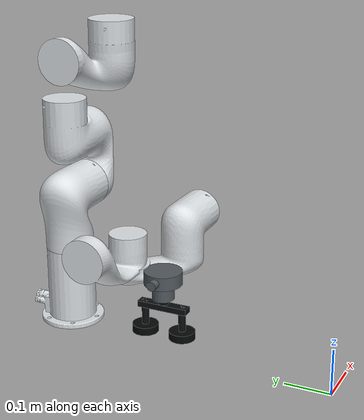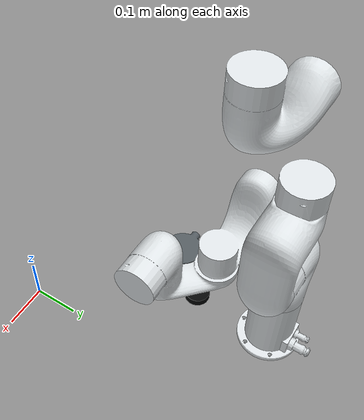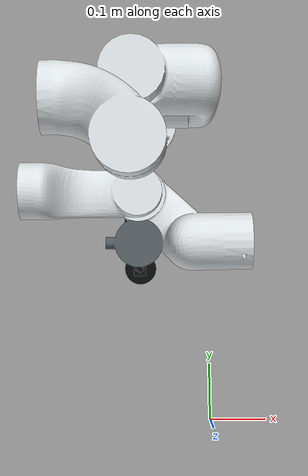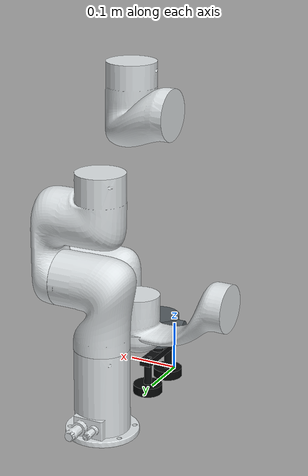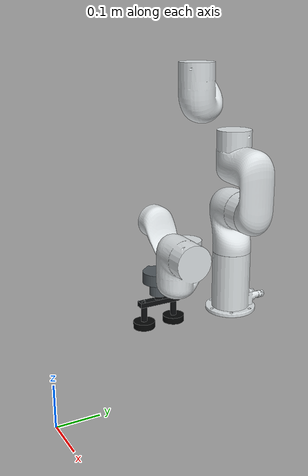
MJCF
<?xml version='1.0' encoding='utf-8'?>
<mujoco model="left xarm6">
  <compiler angle="radian" autolimits="true" meshdir="assets" />
  <option integrator="implicitfast" gravity="0 0 -9.81" />
  <asset>
    <material name="left_white" rgba="0.86 0.88 0.89 1" specular="0.32" shininess="0.42" reflectance="0.04" />
    <material name="left_gray" rgba="0.32 0.35 0.37 1" specular="0.55" shininess="0.62" reflectance="0.10" />
    <material name="left_black" rgba="0.045 0.052 0.058 1" specular="0.16" shininess="0.24" reflectance="0.02" />
    <material name="left_vacuum_rubber" rgba="0.02 0.025 0.025 1" specular="0.06" shininess="0.12" />
    <mesh file="link_base.stl" name="left_link_base" />
    <mesh file="link1.stl" name="left_link1" />
    <mesh file="link2.stl" name="left_link2" />
    <mesh file="link3.stl" name="left_link3" />
    <mesh file="link4.stl" name="left_link4" />
    <mesh file="link5.stl" name="left_link5" />
    <mesh file="link6.stl" name="left_link6" />
    <mesh file="end_tool.stl" name="left_end_tool" />
  </asset>
  <default>
    <default class="left_xarm6">
      <geom type="mesh" material="left_white" contype="0" conaffinity="0" />
      <joint axis="0 0 1" armature="0.1" range="-6.28319 6.28319" frictionloss="1" />
      <default class="left_size1">
        <joint damping="10" />
      </default>
      <default class="left_size2">
        <joint damping="5" />
      </default>
      <default class="left_size3">
        <joint damping="2" />
      </default>
      <default class="left_visual">
        <geom type="mesh" contype="0" conaffinity="0" group="2" />
      </default>
      <site size="0.001" rgba="1 0 0 1" group="4" />
    </default>
  </default>
  <worldbody>
    <body name="left_line_base" pos="-0.12 0.52 0.12" childclass="left_xarm6" euler="0 0 -1.5708">
      <inertial pos="-0.021131 -0.0016302 0.056488" quat="0.696843 0.20176 0.10388 0.680376" mass="0.88556" diaginertia="0.00382023 0.00335282 0.00167725" />
      <geom mesh="left_link_base" />
      <body name="left_link1" pos="0 0 0.267">
        <inertial pos="-0.0002 0.02905 -0.01233" quat="0.978953 -0.202769 -0.00441617 -0.0227264" mass="2.382" diaginertia="0.00569127 0.00533384 0.00293865" />
        <joint name="left_joint1" class="left_size1" />
        <geom mesh="left_link1" />
        <body name="left_link2" quat="1 -1 0 0">
          <inertial pos="0.03881 -0.22783 0.03496" quat="0.635305 0.753023 0.170976 -0.010531" mass="2.2675" diaginertia="0.0294477 0.0281783 0.00383449" />
          <joint name="left_joint2" range="-2.059 2.0944" class="left_size1" />
          <geom mesh="left_link2" />
          <body name="left_link3" pos="0.0535 -0.2845 0">
            <inertial pos="0.07041 0.11631 0.0107" quat="0.845838 0.425539 -0.293179 0.132369" mass="1.875" diaginertia="0.00714132 0.00699471 0.00196753" />
            <joint name="left_joint3" range="-3.927 0.19198" class="left_size2" />
            <geom mesh="left_link3" />
            <body name="left_link4" pos="0.0775 0.3425 0" quat="1 -1 0 0">
              <inertial pos="-0.00018 0.01798 -0.02291" quat="0.99929 -0.0369702 0.00179434 -0.00701174" mass="1.3192" diaginertia="0.00489614 0.00447403 0.00132609" />
              <joint name="left_joint4" class="left_size2" />
              <geom mesh="left_link4" />
              <body name="left_link5" pos="0 0 0" quat="1 1 0 0">
                <inertial pos="0.0651 0.03096 0.00315" quat="-0.223008 0.771309 0.16027 0.574163" mass="1.33854" diaginertia="0.00241824 0.00213367 0.00108731" />
                <joint name="left_joint5" range="-1.69297 3.14159" class="left_size3" />
                <geom mesh="left_link5" />
                <body name="left_link6" pos="0.076 0.097 0" quat="1 -1 0 0">
                  <inertial pos="0.00763576 -0.00272358 0.0307029" quat="0.634077 -0.153028 -0.073538 0.754401" mass="0.838615" diaginertia="0.00129456 0.00116006 0.00078716" />
                  <joint name="left_joint6" class="left_size3" />
                  <geom material="left_gray" mesh="left_end_tool" quat="0 0 0 1" />
                  <body name="left_vacuum_end_effector" pos="0 0 0.015">
                    <inertial pos="0 0 0.045" mass="0.25" diaginertia="0.00018 0.00018 0.00008" />
                    <geom name="left_vacuum_mount_geom" type="cylinder" pos="0 0 -0.008" size="0.022 0.024" material="left_gray" mass="0.12" friction="0.8 0.8 0.8" contype="0" conaffinity="0" />
                    <geom name="left_vacuum_center_connector_geom" type="cylinder" pos="0 0 0.022" size="0.010 0.014" material="left_black" mass="0.025" friction="0.8 0.8 0.8" contype="0" conaffinity="0" />
                    <geom name="left_vacuum_crossbar_geom" type="box" pos="0 0 0.034" size="0.052 0.010 0.006" material="left_black" mass="0.04" friction="0.8 0.8 0.8" contype="0" conaffinity="0" />
                    <geom name="left_vacuum_stem_left_geom" type="cylinder" pos="-0.040 0 0.054" size="0.007 0.026" material="left_black" mass="0.025" friction="0.8 0.8 0.8" contype="0" conaffinity="0" />
                    <geom name="left_vacuum_stem_right_geom" type="cylinder" pos="0.040 0 0.054" size="0.007 0.026" material="left_black" mass="0.025" friction="0.8 0.8 0.8" contype="0" conaffinity="0" />
                    <geom name="left_vacuum_cup_left_geom" type="cylinder" pos="-0.040 0 0.086" size="0.026 0.008" material="left_vacuum_rubber" mass="0.04" friction="1.2 1.2 1.2" contype="0" conaffinity="0" />
                    <geom name="left_vacuum_cup_right_geom" type="cylinder" pos="0.040 0 0.086" size="0.026 0.008" material="left_vacuum_rubber" mass="0.04" friction="1.2 1.2 1.2" contype="0" conaffinity="0" />
                    <site name="left_vacuum_suction_site" pos="0 0 0.087" type="sphere" size="0.008" rgba="0 0.8 1 0.85" />
                    <site name="left_link_tcp" pos="0 0 0.087" type="sphere" size="0.01" rgba="1 0 0 0" group="1" />
                  </body>
                </body>
              </body>
            </body>
          </body>
        </body>
      </body>
    </body>
  </worldbody>
  <actuator>
    <velocity name="left_vel1" joint="left_joint1" kv="1000" ctrlrange="-3.14159 3.14159" forcerange="-50 50" />
    <velocity name="left_vel2" joint="left_joint2" kv="1000" ctrlrange="-3.14159 3.14159" forcerange="-50 50" />
    <velocity name="left_vel3" joint="left_joint3" kv="1000" ctrlrange="-3.14159 3.14159" forcerange="-30 30" />
    <velocity name="left_vel4" joint="left_joint4" kv="1000" ctrlrange="-3.14159 3.14159" forcerange="-30 30" />
    <velocity name="left_vel5" joint="left_joint5" kv="1000" ctrlrange="-3.14159 3.14159" forcerange="-20 20" />
    <velocity name="left_vel6" joint="left_joint6" kv="1000" ctrlrange="-3.14159 3.14159" forcerange="-20 20" />
  </actuator>
</mujoco>
